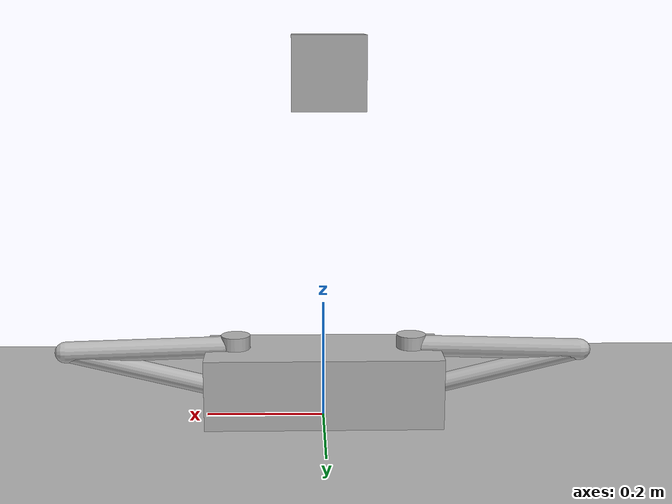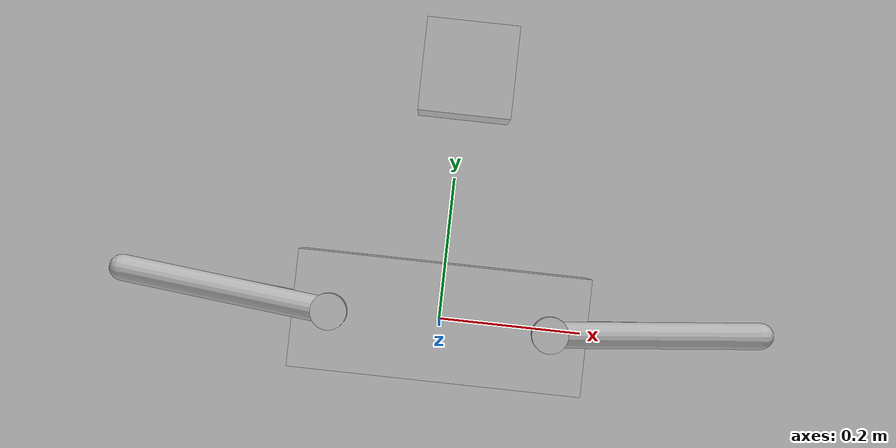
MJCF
<mujoco model="piper12_dual">
  <compiler angle="radian" inertiafromgeom="false"/>

  <option gravity="0 0 -9.81" timestep="0.002"/>

  <default>
    <joint damping="0.3" armature="0.001"/>
    <geom contype="1" conaffinity="1" rgba="0.7 0.7 0.7 1"/>
    <motor ctrlrange="-20 20" ctrllimited="true"/>
  </default>

  <asset>
    <texture type="skybox" builtin="gradient" rgb1="0.3 0.5 0.7" rgb2="0 0 0" width="512" height="512"/>
    <texture name="grid" type="2d" builtin="checker" rgb1="0.2 0.3 0.4" rgb2="0.1 0.15 0.2" width="512" height="512"/>
    <material name="floor_mat" texture="grid" texrepeat="8 8" reflectance="0.2"/>
    <material name="link_mat" rgba="0.6 0.65 0.7 1"/>
    <material name="joint_mat" rgba="0.3 0.3 0.8 1"/>
    <material name="ee_mat" rgba="0.9 0.2 0.2 1"/>
    <material name="base_mat" rgba="0.5 0.5 0.55 1"/>
    <material name="left_mat" rgba="0.2 0.6 0.4 1"/>
    <material name="right_mat" rgba="0.6 0.4 0.2 1"/>
    <material name="grip_mat" rgba="0.4 0.4 0.4 1"/>
    <material name="object_mat" rgba="0.1 0.7 0.3 1"/>
  </asset>

  <worldbody>
    <light diffuse="0.8 0.8 0.8" pos="0 0 3" dir="0 0 -1"/>
    <light diffuse="0.4 0.4 0.4" pos="0 2 2" dir="0 -0.5 -1"/>
    <geom type="plane" size="2 2 0.01" material="floor_mat"/>

    <!-- Shared base (Piper mounting plate / ALOHA frame)             -->
    <body name="base" pos="0 0 0">
      <geom type="box" size="0.2 0.08 0.06" pos="0 0 0.06" material="base_mat"/>
      <inertial pos="0 0 0.06" mass="2.0"
                fullinertia="0.005 0.015 0.015 0 0 0"/>

      <!-- LEFT ARM (mounted at -0.15, 0, 0.123)                   -->
      <!-- Piper joint1 origin: (0, 0, 0.123)                      -->

      <!-- L_link1 / L_j1: yaw (Z-axis), RPY=(0,0,0) -->
      <body name="L_link1" pos="-0.15 0 0.123">
        <joint name="L_j1" type="hinge" axis="0 0 1"
               limited="true" range="-2.618 2.618"/>
        <inertial pos="0.000122 0.000105 -0.004386"
                  mass="0.215052"
                  fullinertia="1.09639e-04 9.95612e-05 1.16364e-04 2.51e-07 -1.89e-07 1.01e-08"/>
        <geom type="cylinder" size="0.025 0.02" material="left_mat"/>
        <geom type="sphere" pos="0 0 0" size="0.02" material="joint_mat"/>

        <!-- L_link2 / L_j2: shoulder pitch, RPY=(1.5708, -0.10095, -3.1416) -->
        <body name="L_link2" pos="0 0 0" euler="1.5708 -0.10095 -3.1416">
          <joint name="L_j2" type="hinge" axis="0 0 1"
                 limited="true" range="-2.094 2.094"/>
          <inertial pos="0.198666 -0.010927 0.001421"
                    mass="0.463914"
                    fullinertia="2.14137e-04 1.00030e-03 1.04417e-03 7.26121e-05 -9.88e-07 -1.33e-06"/>
          <geom type="capsule" fromto="0 0 0  0.285 0 0" size="0.018" material="left_mat"/>
          <geom type="sphere" pos="0 0 0" size="0.018" material="joint_mat"/>

          <!-- L_link3 / L_j3: elbow pitch, RPY=(0, 0, -1.759) -->
          <body name="L_link3" pos="0.28503 0 0" euler="0 0 -1.759">
            <joint name="L_j3" type="hinge" axis="0 0 1"
                   limited="true" range="-2.094 2.094"/>
            <inertial pos="-0.020274 -0.133915 -0.000459"
                      mass="0.219942"
                      fullinertia="1.89538e-04 7.14245e-05 2.01213e-04 -8.06e-06 5.10e-07 8.89e-07"/>
            <geom type="capsule" fromto="0 0 0  -0.022 -0.251 0" size="0.016" material="left_mat"/>
            <geom type="sphere" pos="0 0 0" size="0.016" material="joint_mat"/>

            <!-- L_link4 / L_j4: wrist roll, RPY=(1.5708, 0, 0) -->
            <body name="L_link4" pos="-0.021984 -0.25075 0" euler="1.5708 0 0">
              <joint name="L_j4" type="hinge" axis="0 0 1"
                     limited="true" range="-2.618 2.618"/>
              <inertial pos="-9.67e-05 0.000876 -0.004969"
                        mass="0.131814"
                        fullinertia="3.96965e-05 5.13320e-05 4.14768e-05 -2.32e-08 -1.15e-07 9.93e-08"/>
              <geom type="cylinder" size="0.014 0.015" material="left_mat"/>
              <geom type="sphere" pos="0 0 0" size="0.013" material="joint_mat"/>

              <!-- L_link5 / L_j5: wrist pitch, RPY=(-1.5708, 0, 0) -->
              <body name="L_link5" pos="0 0 0" euler="-1.5708 0 0">
                <joint name="L_j5" type="hinge" axis="0 0 1"
                       limited="true" range="-2.094 2.094"/>
                <inertial pos="-4.11e-05 -0.056649 -0.003721"
                          mass="0.134101"
                          fullinertia="4.10994e-05 5.27723e-05 4.60419e-05 -2.06e-08 1.30e-10 1.91e-07"/>
                <geom type="capsule" fromto="0 0 0  8.83e-05 -0.091 0" size="0.013" material="left_mat"/>
                <geom type="sphere" pos="0 0 0" size="0.013" material="joint_mat"/>

                <!-- L_link6 / L_j6: wrist roll, RPY=(1.5708, 0, 0) -->
                <!-- Combined link6 (7g) + gripper_base (145g) = 152.3g -->
                <body name="L_link6" pos="8.8259e-05 -0.091 0" euler="1.5708 0 0">
                  <joint name="L_j6" type="hinge" axis="0 0 1"
                         limited="true" range="-2.618 2.618"/>
                  <inertial pos="-0.000175 7.56e-05 0.031032"
                            mass="0.152309"
                            fullinertia="9.80860e-05 4.09930e-05 1.14824e-04 -1.33e-07 -8.22e-08 3.47e-08"/>
                  <geom type="cylinder" size="0.015 0.025" material="left_mat"/>
                  <geom type="sphere" pos="0 0 0" size="0.013" material="joint_mat"/>

                  <!-- Left end-effector -->
                  <site name="L_ee" pos="0 0 0.07" size="0.012" rgba="1 0.2 0.2 1"/>

                  <!-- Left gripper -->
                  <body name="L_gripper" pos="0 0 0.07">
                    <joint name="L_grip" type="slide" axis="0 1 0"
                           limited="true" range="0 0.035" damping="5" armature="0.005"/>
                    <geom type="box" size="0.008 0.004 0.025" pos="0 0.012 0" material="grip_mat"/>
                    <inertial pos="0 0.012 0" mass="0.03"
                              fullinertia="3e-06 3e-06 3e-06 0 0 0"/>
                  </body>

                </body>
              </body>
            </body>
          </body>
        </body>
      </body>

      <!-- RIGHT ARM (mounted at +0.15, 0, 0.123, mirrored X)      -->

      <!-- R_link1 / R_j1: yaw (Z-axis), RPY=(0,0,0) -->
      <body name="R_link1" pos="0.15 0 0.123">
        <joint name="R_j1" type="hinge" axis="0 0 1"
               limited="true" range="-2.618 2.618"/>
        <inertial pos="-0.000122 0.000105 -0.004386"
                  mass="0.215052"
                  fullinertia="1.09639e-04 9.95612e-05 1.16364e-04 -2.51e-07 1.89e-07 1.01e-08"/>
        <geom type="cylinder" size="0.025 0.02" material="right_mat"/>
        <geom type="sphere" pos="0 0 0" size="0.02" material="joint_mat"/>

        <!-- R_link2 / R_j2: shoulder pitch, mirrored euler -->
        <body name="R_link2" pos="0 0 0" euler="1.5708 0.10095 -3.1416">
          <joint name="R_j2" type="hinge" axis="0 0 1"
                 limited="true" range="-2.094 2.094"/>
          <inertial pos="-0.198666 -0.010927 0.001421"
                    mass="0.463914"
                    fullinertia="2.14137e-04 1.00030e-03 1.04417e-03 -7.26121e-05 9.88e-07 -1.33e-06"/>
          <geom type="capsule" fromto="0 0 0  -0.285 0 0" size="0.018" material="right_mat"/>
          <geom type="sphere" pos="0 0 0" size="0.018" material="joint_mat"/>

          <!-- R_link3 / R_j3: elbow pitch, mirrored -->
          <body name="R_link3" pos="-0.28503 0 0" euler="0 0 1.759">
            <joint name="R_j3" type="hinge" axis="0 0 1"
                   limited="true" range="-2.094 2.094"/>
            <inertial pos="0.020274 -0.133915 -0.000459"
                      mass="0.219942"
                      fullinertia="1.89538e-04 7.14245e-05 2.01213e-04 8.06e-06 -5.10e-07 8.89e-07"/>
            <geom type="capsule" fromto="0 0 0  0.022 -0.251 0" size="0.016" material="right_mat"/>
            <geom type="sphere" pos="0 0 0" size="0.016" material="joint_mat"/>

            <!-- R_link4 / R_j4: wrist roll, mirrored -->
            <body name="R_link4" pos="0.021984 -0.25075 0" euler="1.5708 0 0">
              <joint name="R_j4" type="hinge" axis="0 0 1"
                     limited="true" range="-2.618 2.618"/>
              <inertial pos="9.67e-05 0.000876 -0.004969"
                        mass="0.131814"
                        fullinertia="3.96965e-05 5.13320e-05 4.14768e-05 2.32e-08 1.15e-07 9.93e-08"/>
              <geom type="cylinder" size="0.014 0.015" material="right_mat"/>
              <geom type="sphere" pos="0 0 0" size="0.013" material="joint_mat"/>

              <!-- R_link5 / R_j5: wrist pitch, mirrored -->
              <body name="R_link5" pos="0 0 0" euler="-1.5708 0 0">
                <joint name="R_j5" type="hinge" axis="0 0 1"
                       limited="true" range="-2.094 2.094"/>
                <inertial pos="4.11e-05 -0.056649 -0.003721"
                          mass="0.134101"
                          fullinertia="4.10994e-05 5.27723e-05 4.60419e-05 2.06e-08 -1.30e-10 1.91e-07"/>
                <geom type="capsule" fromto="0 0 0  -8.83e-05 -0.091 0" size="0.013" material="right_mat"/>
                <geom type="sphere" pos="0 0 0" size="0.013" material="joint_mat"/>

                <!-- R_link6 / R_j6: wrist roll, mirrored -->
                <body name="R_link6" pos="-8.8259e-05 -0.091 0" euler="1.5708 0 0">
                  <joint name="R_j6" type="hinge" axis="0 0 1"
                         limited="true" range="-2.618 2.618"/>
                  <inertial pos="0.000175 7.56e-05 0.031032"
                            mass="0.152309"
                            fullinertia="9.80860e-05 4.09930e-05 1.14824e-04 1.33e-07 8.22e-08 3.47e-08"/>
                  <geom type="cylinder" size="0.015 0.025" material="right_mat"/>
                  <geom type="sphere" pos="0 0 0" size="0.013" material="joint_mat"/>

                  <!-- Right end-effector -->
                  <site name="R_ee" pos="0 0 0.07" size="0.012" rgba="1 0.2 0.2 1"/>

                  <!-- Right gripper -->
                  <body name="R_gripper" pos="0 0 0.07">
                    <joint name="R_grip" type="slide" axis="0 1 0"
                           limited="true" range="0 0.035" damping="5" armature="0.005"/>
                    <geom type="box" size="0.008 0.004 0.025" pos="0 0.012 0" material="grip_mat"/>
                    <inertial pos="0 0.012 0" mass="0.03"
                              fullinertia="3e-06 3e-06 3e-06 0 0 0"/>
                  </body>

                </body>
              </body>
            </body>
          </body>
        </body>
      </body>
    </body>

    <!-- Graspable object                                             -->
    <body name="object" pos="0 0.3 0.6">
      <joint name="object_free" type="free"/>
      <geom type="box" size="0.05 0.05 0.05" material="object_mat"
            mass="0.5" friction="1.0 0.005 0.0001"/>
      <inertial pos="0 0 0" mass="0.5"
                fullinertia="8.33e-04 8.33e-04 8.33e-04 0 0 0"/>
      <site name="object_site" pos="0 0 0" size="0.01" rgba="1 1 0 1"/>
    </body>

  </worldbody>

  <!-- Equality constraints (weld for grasping)                     -->
  <equality>
    <weld name="grasp_left"  body1="L_link6" body2="object"
          relpose="0 0 0.07 1 0 0 0" active="false"/>
    <weld name="grasp_right" body1="R_link6" body2="object"
          relpose="0 0 0.07 1 0 0 0" active="false"/>
  </equality>

  <!-- Actuators (6+6 revolute + 1+1 prismatic = 14)                -->
  <actuator>
    <!-- Left arm -->
    <motor joint="L_j1" name="a_L_j1" gear="1"/>
    <motor joint="L_j2" name="a_L_j2" gear="1"/>
    <motor joint="L_j3" name="a_L_j3" gear="1"/>
    <motor joint="L_j4" name="a_L_j4" gear="1"/>
    <motor joint="L_j5" name="a_L_j5" gear="1"/>
    <motor joint="L_j6" name="a_L_j6" gear="1"/>
    <motor joint="L_grip" name="a_L_grip" gear="1" ctrlrange="-5 5"/>
    <!-- Right arm -->
    <motor joint="R_j1" name="a_R_j1" gear="1"/>
    <motor joint="R_j2" name="a_R_j2" gear="1"/>
    <motor joint="R_j3" name="a_R_j3" gear="1"/>
    <motor joint="R_j4" name="a_R_j4" gear="1"/>
    <motor joint="R_j5" name="a_R_j5" gear="1"/>
    <motor joint="R_j6" name="a_R_j6" gear="1"/>
    <motor joint="R_grip" name="a_R_grip" gear="1" ctrlrange="-5 5"/>
  </actuator>

  <!-- Sensors                                                       -->
  <sensor>
    <!-- Left arm joint positions -->
    <jointpos joint="L_j1" name="L_j1_pos"/>
    <jointpos joint="L_j2" name="L_j2_pos"/>
    <jointpos joint="L_j3" name="L_j3_pos"/>
    <jointpos joint="L_j4" name="L_j4_pos"/>
    <jointpos joint="L_j5" name="L_j5_pos"/>
    <jointpos joint="L_j6" name="L_j6_pos"/>
    <jointpos joint="L_grip" name="L_grip_pos"/>
    <!-- Right arm joint positions -->
    <jointpos joint="R_j1" name="R_j1_pos"/>
    <jointpos joint="R_j2" name="R_j2_pos"/>
    <jointpos joint="R_j3" name="R_j3_pos"/>
    <jointpos joint="R_j4" name="R_j4_pos"/>
    <jointpos joint="R_j5" name="R_j5_pos"/>
    <jointpos joint="R_j6" name="R_j6_pos"/>
    <jointpos joint="R_grip" name="R_grip_pos"/>
    <!-- Left arm joint velocities -->
    <jointvel joint="L_j1" name="L_j1_vel"/>
    <jointvel joint="L_j2" name="L_j2_vel"/>
    <jointvel joint="L_j3" name="L_j3_vel"/>
    <jointvel joint="L_j4" name="L_j4_vel"/>
    <jointvel joint="L_j5" name="L_j5_vel"/>
    <jointvel joint="L_j6" name="L_j6_vel"/>
    <jointvel joint="L_grip" name="L_grip_vel"/>
    <!-- Right arm joint velocities -->
    <jointvel joint="R_j1" name="R_j1_vel"/>
    <jointvel joint="R_j2" name="R_j2_vel"/>
    <jointvel joint="R_j3" name="R_j3_vel"/>
    <jointvel joint="R_j4" name="R_j4_vel"/>
    <jointvel joint="R_j5" name="R_j5_vel"/>
    <jointvel joint="R_j6" name="R_j6_vel"/>
    <jointvel joint="R_grip" name="R_grip_vel"/>
    <!-- End-effector positions -->
    <framepos objtype="site" objname="L_ee" name="L_ee_pos"/>
    <framepos objtype="site" objname="R_ee" name="R_ee_pos"/>
    <!-- Object position -->
    <framepos objtype="body" objname="object" name="object_pos"/>
  </sensor>
</mujoco>
